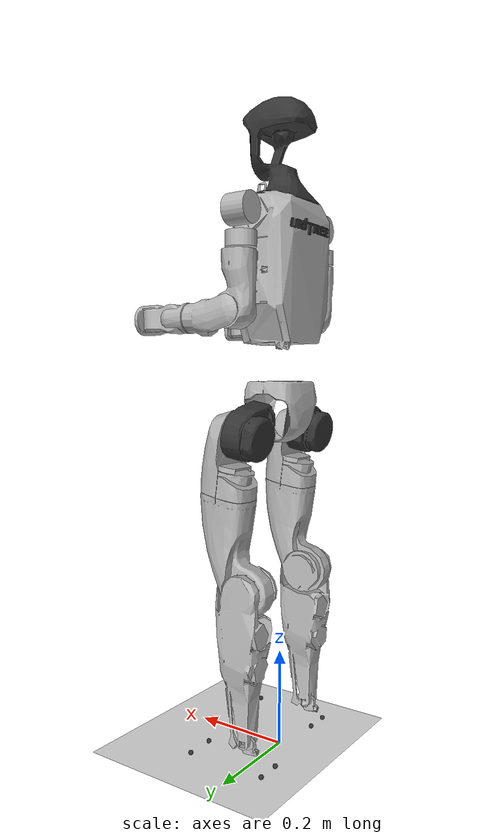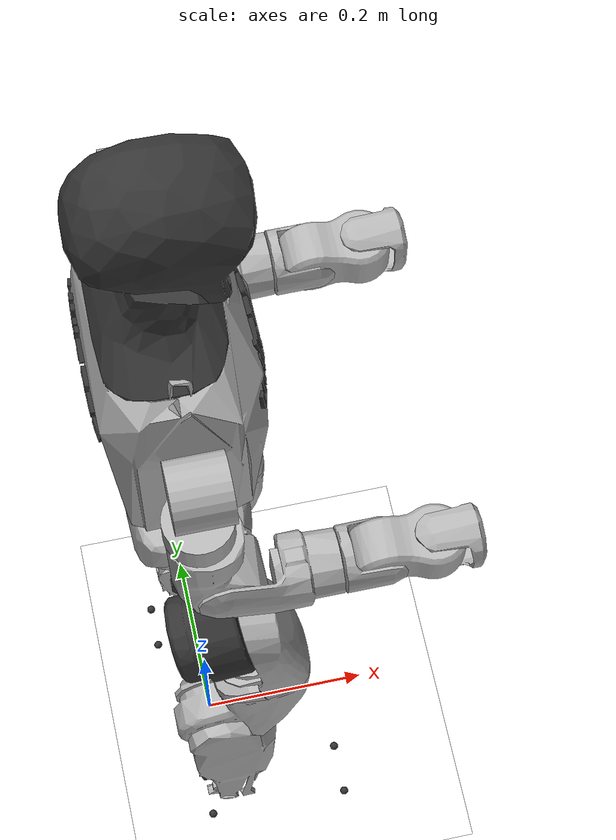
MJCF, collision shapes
<mujoco model="g1_mocap">
  <compiler angle="radian" meshdir="meshes"/>

  <default>
    <motor ctrlrange="-1 1" ctrllimited="true"/>
    <joint actuatorfrclimited="true" type="hinge"/>
  </default>

  <asset>
    <mesh name="pelvis" file="pelvis.STL"/>
    <mesh name="pelvis_contour_link" file="pelvis_contour_link.STL"/>
    <mesh name="left_hip_pitch_link" file="left_hip_pitch_link.STL"/>
    <mesh name="left_hip_roll_link" file="left_hip_roll_link.STL"/>
    <mesh name="left_hip_yaw_link" file="left_hip_yaw_link.STL"/>
    <mesh name="left_knee_link" file="left_knee_link.STL"/>
    <mesh name="left_ankle_pitch_link" file="left_ankle_pitch_link.STL"/>
    <mesh name="left_ankle_roll_link" file="left_ankle_roll_link.STL"/>
    <mesh name="right_hip_pitch_link" file="right_hip_pitch_link.STL"/>
    <mesh name="right_hip_roll_link" file="right_hip_roll_link.STL"/>
    <mesh name="right_hip_yaw_link" file="right_hip_yaw_link.STL"/>
    <mesh name="right_knee_link" file="right_knee_link.STL"/>
    <mesh name="right_ankle_pitch_link" file="right_ankle_pitch_link.STL"/>
    <mesh name="right_ankle_roll_link" file="right_ankle_roll_link.STL"/>
    <mesh name="waist_yaw_link" file="waist_yaw_link_rev_1_0.STL"/>
    <mesh name="waist_roll_link" file="waist_roll_link_rev_1_0.STL"/>
    <mesh name="torso_link" file="torso_link_rev_1_0.STL"/>
    <mesh name="logo_link" file="logo_link.STL"/>
    <mesh name="head_link" file="head_link.STL"/>
    <mesh name="left_shoulder_pitch_link" file="left_shoulder_pitch_link.STL"/>
    <mesh name="left_shoulder_roll_link" file="left_shoulder_roll_link.STL"/>
    <mesh name="left_shoulder_yaw_link" file="left_shoulder_yaw_link.STL"/>
    <mesh name="left_elbow_link" file="left_elbow_link.STL"/>
    <mesh name="left_wrist_roll_link" file="left_wrist_roll_link.STL"/>
    <mesh name="left_wrist_pitch_link" file="left_wrist_pitch_link.STL"/>
    <mesh name="left_wrist_yaw_link" file="left_wrist_yaw_link.STL"/>
    <mesh name="left_rubber_hand" file="left_rubber_hand.STL"/>
    <mesh name="right_shoulder_pitch_link" file="right_shoulder_pitch_link.STL"/>
    <mesh name="right_shoulder_roll_link" file="right_shoulder_roll_link.STL"/>
    <mesh name="right_shoulder_yaw_link" file="right_shoulder_yaw_link.STL"/>
    <mesh name="right_elbow_link" file="right_elbow_link.STL"/>
    <mesh name="right_wrist_roll_link" file="right_wrist_roll_link.STL"/>
    <mesh name="right_wrist_pitch_link" file="right_wrist_pitch_link.STL"/>
    <mesh name="right_wrist_yaw_link" file="right_wrist_yaw_link.STL"/>
    <mesh name="right_rubber_hand" file="right_rubber_hand.STL"/>
  </asset>

  <worldbody>
    <body name="pelvis" pos="0 0 0.793">
      <inertial pos="0 0 -0.07605" quat="1 0 -0.000399148 0" mass="3.813" diaginertia="0.010549 0.0093089 0.0079184"/>
      <freejoint name="pelvis"/>
      <geom type="mesh" contype="0" conaffinity="0" group="1" density="0" rgba="0.2 0.2 0.2 1" mesh="pelvis"/>
      <geom type="mesh" contype="0" conaffinity="0" group="1" density="0" rgba="0.7 0.7 0.7 1" mesh="pelvis_contour_link"/>
      <geom type="mesh" rgba="0.7 0.7 0.7 1" mesh="pelvis_contour_link"/>
      <site name="imu_in_pelvis" size="0.01" pos="0.04525 0 -0.08339"/>
      <!-- Keyframe pelvis -->
      <body name="keyframe_pelvis_link" pos="0 0 -0.075">
        <inertial pos="0 0 0" mass="0.001" diaginertia="1e-07 1e-07 1e-07"/>
      </body>
      <body name="left_hip_pitch_link" pos="0 0.064452 -0.1027">
        <inertial pos="0.002741 0.047791 -0.02606" quat="0.954862 0.293964 0.0302556 0.030122" mass="1.35" diaginertia="0.00181517 0.00153422 0.00116212"/>
        <joint name="left_hip_pitch_joint" pos="0 0 0" axis="0 1 0" range="-1.57 1.57" actuatorfrcrange="-88 88"/>
        <geom type="mesh" contype="0" conaffinity="0" group="1" density="0" rgba="0.2 0.2 0.2 1" mesh="left_hip_pitch_link"/>
        <geom type="mesh" rgba="0.2 0.2 0.2 1" mesh="left_hip_pitch_link"/>
        <body name="left_hip_roll_link" pos="0 0.052 -0.030465" quat="0.996179 0 -0.0873386 0">
          <inertial pos="0.029812 -0.001045 -0.087934" quat="0.977808 -1.97119e-05 0.205576 -0.0403793" mass="1.52" diaginertia="0.00254986 0.00241169 0.00148755"/>
          <joint name="left_hip_roll_joint" pos="0 0 0" axis="1 0 0" range="-0.5236 1.57" actuatorfrcrange="-139 139"/>
          <geom type="mesh" contype="0" conaffinity="0" group="1" density="0" rgba="0.7 0.7 0.7 1" mesh="left_hip_roll_link"/>
          <geom type="mesh" rgba="0.7 0.7 0.7 1" mesh="left_hip_roll_link"/>
          <body name="keyframe_left_hip_link" pos="0 -0.01 0">
            <inertial pos="0 0 0" mass="0.001" diaginertia="1e-07 1e-07 1e-07"/>
          </body>
          <body name="left_hip_yaw_link" pos="0.025001 0 -0.12412">
            <inertial pos="-0.057709 -0.010981 -0.15078" quat="0.600598 0.15832 0.223482 0.751181" mass="1.702" diaginertia="0.00776166 0.00717575 0.00160139"/>
            <joint name="left_hip_yaw_joint" pos="0 0 0" axis="0 0 1" range="-1.57 1.57" actuatorfrcrange="-88 88"/>
            <geom type="mesh" contype="0" conaffinity="0" group="1" density="0" rgba="0.7 0.7 0.7 1" mesh="left_hip_yaw_link"/>
            <geom type="mesh" rgba="0.7 0.7 0.7 1" mesh="left_hip_yaw_link"/>
            <body name="left_knee_link" pos="-0.078273 0.0021489 -0.17734" quat="0.996179 0 0.0873386 0">
              <inertial pos="0.005457 0.003964 -0.12074" quat="0.923418 -0.0327699 0.0158246 0.382067" mass="1.932" diaginertia="0.0113804 0.0112778 0.00146458"/>
              <joint name="left_knee_joint" pos="0 0 0" axis="0 1 0" range="-0.087267 2.8798" actuatorfrcrange="-139 139"/>
              <geom type="mesh" contype="0" conaffinity="0" group="1" density="0" rgba="0.7 0.7 0.7 1" mesh="left_knee_link"/>
              <geom type="mesh" rgba="0.7 0.7 0.7 1" mesh="left_knee_link"/>
              <!-- Keyframe lower left leg -->
              <body name="keyframe_left_knee_link" pos="0 0 0">
                <inertial pos="0 0 0" mass="0.001" diaginertia="1e-07 1e-07 1e-07"/>
              </body>
              <body name="left_ankle_pitch_link" pos="0 -9.4445e-05 -0.30001">
                <inertial pos="-0.007269 0 0.011137" quat="0.603053 0.369225 0.369225 0.603053" mass="0.074" diaginertia="1.89e-05 1.40805e-05 6.9195e-06"/>
                <joint name="left_ankle_pitch_joint" pos="0 0 0" axis="0 1 0" range="-0.87267 0.5236" actuatorfrcrange="-50 50"/>
                <geom type="mesh" contype="0" conaffinity="0" group="1" density="0" rgba="0.7 0.7 0.7 1" mesh="left_ankle_pitch_link"/>
                <geom type="mesh" rgba="0.7 0.7 0.7 1" mesh="left_ankle_pitch_link"/>
                <body name="left_ankle_roll_link" pos="0 0 -0.017558">
                  <inertial pos="0.026505 0 -0.016425" quat="-0.000481092 0.728482 -0.000618967 0.685065" mass="0.608" diaginertia="0.00167218 0.0016161 0.000217621"/>
                  <joint name="left_ankle_roll_joint" pos="0 0 0" axis="1 0 0" range="-0.2618 0.2618" actuatorfrcrange="-50 50"/>
                  <geom type="mesh" contype="0" conaffinity="0" group="1" density="0" rgba="0.2 0.2 0.2 1" mesh="left_ankle_roll_link"/>
                  <geom size="0.005" pos="-0.05 0.025 -0.03" rgba="0.2 0.2 0.2 1"/>
                  <geom size="0.005" pos="-0.05 -0.025 -0.03" rgba="0.2 0.2 0.2 1"/>
                  <geom size="0.005" pos="0.12 0.03 -0.03" rgba="0.2 0.2 0.2 1"/>
                  <geom size="0.005" pos="0.12 -0.03 -0.03" rgba="0.2 0.2 0.2 1"/>
                  <!-- Keyframe left ankle (parent: left_ankle_roll_link per URDF) -->
                  <body name="keyframe_left_ankle_link" pos="0 0 0">
                      <inertial pos="0 0 0" mass="0.001" diaginertia="1e-07 1e-07 1e-07"/>
                  </body>
                  <body name="left_toe_link" pos="0.1 0 -0.02"/>
                  </body>
              </body>
            </body>
          </body>
        </body>
      </body>
      <body name="pelvis_contour_link" pos="0 0 0"></body>
      <body name="right_hip_pitch_link" pos="0 -0.064452 -0.1027">
        <inertial pos="0.002741 -0.047791 -0.02606" quat="0.954862 -0.293964 0.0302556 -0.030122" mass="1.35" diaginertia="0.00181517 0.00153422 0.00116212"/>
        <joint name="right_hip_pitch_joint" pos="0 0 0" axis="0 1 0" range="-1.57 1.57" actuatorfrcrange="-88 88"/>
        <geom type="mesh" contype="0" conaffinity="0" group="1" density="0" rgba="0.2 0.2 0.2 1" mesh="right_hip_pitch_link"/>
        <geom type="mesh" rgba="0.2 0.2 0.2 1" mesh="right_hip_pitch_link"/>
        <body name="right_hip_roll_link" pos="0 -0.052 -0.030465" quat="0.996179 0 -0.0873386 0">
          <inertial pos="0.029812 0.001045 -0.087934" quat="0.977808 1.97119e-05 0.205576 0.0403793" mass="1.52" diaginertia="0.00254986 0.00241169 0.00148755"/>
          <joint name="right_hip_roll_joint" pos="0 0 0" axis="1 0 0" range="-1.57 0.5236" actuatorfrcrange="-139 139"/>
          <geom type="mesh" contype="0" conaffinity="0" group="1" density="0" rgba="0.7 0.7 0.7 1" mesh="right_hip_roll_link"/>
          <geom type="mesh" rgba="0.7 0.7 0.7 1" mesh="right_hip_roll_link"/>
          <!-- Keyframe hips -->
          <body name="keyframe_right_hip_link" pos="0 0.01 0">
            <inertial pos="0 0 0" mass="0.001" diaginertia="1e-07 1e-07 1e-07"/>
          </body>
          <body name="right_hip_yaw_link" pos="0.025001 0 -0.12412">
            <inertial pos="-0.057709 0.010981 -0.15078" quat="0.751181 0.223482 0.15832 0.600598" mass="1.702" diaginertia="0.00776166 0.00717575 0.00160139"/>
            <joint name="right_hip_yaw_joint" pos="0 0 0" axis="0 0 1" range="-1.57 1.57" actuatorfrcrange="-88 88"/>
            <geom type="mesh" contype="0" conaffinity="0" group="1" density="0" rgba="0.7 0.7 0.7 1" mesh="right_hip_yaw_link"/>
            <geom type="mesh" rgba="0.7 0.7 0.7 1" mesh="right_hip_yaw_link"/>
            <body name="right_knee_link" pos="-0.078273 -0.0021489 -0.17734" quat="0.996179 0 0.0873386 0">
              <inertial pos="0.005457 -0.003964 -0.12074" quat="0.923439 0.0345276 0.0116333 -0.382012" mass="1.932" diaginertia="0.011374 0.0112843 0.00146452"/>
              <joint name="right_knee_joint" pos="0 0 0" axis="0 1 0" range="-0.087267 2.8798" actuatorfrcrange="-139 139"/>
              <geom type="mesh" contype="0" conaffinity="0" group="1" density="0" rgba="0.7 0.7 0.7 1" mesh="right_knee_link"/>
              <geom type="mesh" rgba="0.7 0.7 0.7 1" mesh="right_knee_link"/>
              <!-- Keyframe lower right leg -->
              <body name="keyframe_right_knee_link" pos="0 0 0">
                <inertial pos="0 0 0" mass="0.001" diaginertia="1e-07 1e-07 1e-07"/>
              </body>
              <body name="right_ankle_pitch_link" pos="0 9.4445e-05 -0.30001">
                <inertial pos="-0.007269 0 0.011137" quat="0.603053 0.369225 0.369225 0.603053" mass="0.074" diaginertia="1.89e-05 1.40805e-05 6.9195e-06"/>
                <joint name="right_ankle_pitch_joint" pos="0 0 0" axis="0 1 0" range="-0.87267 0.5236" actuatorfrcrange="-50 50"/>
                <geom type="mesh" contype="0" conaffinity="0" group="1" density="0" rgba="0.7 0.7 0.7 1" mesh="right_ankle_pitch_link"/>
                <geom type="mesh" rgba="0.7 0.7 0.7 1" mesh="right_ankle_pitch_link"/>
                <body name="right_ankle_roll_link" pos="0.026505 0 -0.016425">
                  <inertial pos="0.026505 0 -0.016425" quat="0.000481092 0.728482 0.000618967 0.685065" mass="0.608" diaginertia="0.00167218 0.0016161 0.000217621"/>
                  <joint name="right_ankle_roll_joint" pos="0 0 0" axis="1 0 0" range="-0.2618 0.2618" actuatorfrcrange="-50 50"/>
                  <geom type="mesh" contype="0" conaffinity="0" group="1" density="0" rgba="0.2 0.2 0.2 1" mesh="right_ankle_roll_link"/>
                  <geom size="0.005" pos="-0.05 0.025 -0.03" rgba="0.2 0.2 0.2 1"/>
                  <geom size="0.005" pos="-0.05 -0.025 -0.03" rgba="0.2 0.2 0.2 1"/>
                  <geom size="0.005" pos="0.12 0.03 -0.03" rgba="0.2 0.2 0.2 1"/>
                  <geom size="0.005" pos="0.12 -0.03 -0.03" rgba="0.2 0.2 0.2 1"/>
                  <!-- Keyframe right ankle (parent: right_ankle_roll_link per URDF) -->
                  <body name="keyframe_right_ankle_link" pos="0 0 0">
                    <inertial pos="0 0 0" mass="0.001" diaginertia="1e-07 1e-07 1e-07"/>
                  </body>
                  <body name="right_toe_link" pos="0.1 0 -0.02"/>
                  </body>
              </body>
            </body>
          </body>
        </body>
      </body>
      <body name="waist_yaw_link">
        <inertial pos="0.003494 0.000233 0.018034" quat="0.289697 0.591001 -0.337795 0.672821" mass="0.214" diaginertia="0.000163531 0.000107714 0.000102205"/>
        <joint name="waist_yaw_joint" pos="0 0 0" axis="0 0 1" range="-1.57 1.57" actuatorfrcrange="-88 88"/>
        <geom type="mesh" contype="0" conaffinity="0" group="1" density="0" rgba="0.7 0.7 0.7 1" mesh="waist_yaw_link"/>
        <body name="waist_roll_link" pos="-0.0039635 0 0.044">
          <inertial pos="0 2.3e-05 0" quat="0.5 0.5 -0.5 0.5" mass="0.086" diaginertia="8.245e-06 7.079e-06 6.339e-06"/>
          <joint name="waist_roll_joint" pos="0 0 0" axis="1 0 0" range="-0.52 0.52" actuatorfrcrange="-50 50"/>
          <geom type="mesh" contype="0" conaffinity="0" group="1" density="0" rgba="0.7 0.7 0.7 1" mesh="waist_roll_link"/>
          <body name="torso_link">
            <inertial pos="0.00203158 0.000339683 0.184568" quat="0.999803 -6.03319e-05 0.0198256 0.00131986" mass="7.818" diaginertia="0.121847 0.109825 0.0273735"/>
            <joint name="waist_pitch_joint" pos="0 0 0" axis="0 1 0" range="-0.52 0.52" actuatorfrcrange="-50 50"/>
            <geom type="mesh" contype="0" conaffinity="0" group="1" density="0" rgba="0.7 0.7 0.7 1" mesh="torso_link"/>
            <geom type="mesh" rgba="0.7 0.7 0.7 1" mesh="torso_link"/>
            <geom pos="0.0039635 0 -0.044" quat="1 0 0 0" type="mesh" contype="0" conaffinity="0" group="1" density="0" rgba="0.2 0.2 0.2 1" mesh="logo_link"/>
            <geom pos="0.0039635 0 -0.044" quat="1 0 0 0" type="mesh" rgba="0.2 0.2 0.2 1" mesh="logo_link"/>
            <!-- Keyframe torso & head -->
            <body name="keyframe_torso_link" pos="0 0 0.2">
              <inertial pos="0 0 0" mass="0.001" diaginertia="1e-07 1e-07 1e-07"/>
            </body>
            <body name="keyframe_head_link" pos="0 0 0.45">
              <inertial pos="0 0 0" mass="0.001" diaginertia="1e-07 1e-07 1e-07"/>
            </body>
            <body name="head_link" pos="0.0039635 0 -0.044">
              <inertial pos="0.0001 0.0001 0.0001" quat="1.0 0.0 0.0 0.0" mass="1.036" diaginertia="0.004 0.004 0.002"/>
            </body>
            <body name="head_mocap" pos="0.0000 0.0000 0.4000"></body>
            <geom pos="0.0039635 0 -0.044" type="mesh" contype="0" conaffinity="0" group="1" density="0" rgba="0.2 0.2 0.2 1" mesh="head_link"/>
            <geom pos="0.0039635 0 -0.044" type="mesh" rgba="0.2 0.2 0.2 1" mesh="head_link"/>
            <site name="imu_in_torso" size="0.01" pos="-0.03959 -0.00224 0.14792"/>
            <body name="imu_in_torso" pos="-0.03959 -0.00224 0.14792"></body>
            <body name="left_shoulder_pitch_link" pos="0.0039563 0.10022 0.24778" quat="0.990264 0.139201 1.38722e-05 -9.86868e-05">
              <inertial pos="0 0.035892 -0.011628" quat="0.654152 0.0130458 -0.326267 0.68225" mass="0.718" diaginertia="0.000465864 0.000432842 0.000406394"/>
              <joint name="left_shoulder_pitch_joint" pos="0 0 0" axis="0 1 0" range="-3.0892 1.149" actuatorfrcrange="-25 25"/>
              <geom type="mesh" contype="0" conaffinity="0" group="1" density="0" rgba="0.7 0.7 0.7 1" mesh="left_shoulder_pitch_link"/>
              <geom size="0.03 0.025" pos="0 0.04 -0.01" quat="0.707107 0 0.707107 0" type="cylinder" rgba="0.7 0.7 0.7 1"/>
              <!-- Keyframe left collar -->
              <body name="keyframe_left_collar_link" pos="0 0 0.02">
                <inertial pos="0 0 0" mass="0.001" diaginertia="1e-07 1e-07 1e-07"/>
              </body>
              <body name="left_shoulder_roll_link" pos="0 0.038 -0.013831" quat="0.990268 -0.139172 0 0">
                <inertial pos="-0.000227 0.00727 -0.063243" quat="0.701256 -0.0196223 -0.00710317 0.712604" mass="0.643" diaginertia="0.000691311 0.000618011 0.000388977"/>
                <joint name="left_shoulder_roll_joint" pos="0 0 0" axis="1 0 0" range="-0.6 2.2515" actuatorfrcrange="-25 25"/>
                <geom type="mesh" contype="0" conaffinity="0" group="1" density="0" rgba="0.7 0.7 0.7 1" mesh="left_shoulder_roll_link"/>
                <geom size="0.03 0.015" pos="-0.004 0.006 -0.053" type="cylinder" rgba="0.7 0.7 0.7 1"/>
                <!-- Keyframe left shoulder (parent: left_shoulder_roll_link per URDF) -->
                <body name="keyframe_left_shoulder_link" pos="0 0 0">
                  <inertial pos="0 0 0" mass="0.001" diaginertia="1e-07 1e-07 1e-07"/>
                </body>
                <body name="left_shoulder_yaw_link" pos="0 0.00624 -0.1032">
                  <inertial pos="0.010773 -0.002949 -0.072009" quat="0.716879 -0.0964829 -0.0679942 0.687134" mass="0.734" diaginertia="0.00106187 0.00103217 0.000400661"/>
                  <joint name="left_shoulder_yaw_joint" pos="0 0 0" axis="0 0 1" range="-1.4 2.0" actuatorfrcrange="-25 25"/>
                  <geom type="mesh" contype="0" conaffinity="0" group="1" density="0" rgba="0.7 0.7 0.7 1" mesh="left_shoulder_yaw_link"/>
                  <geom type="mesh" rgba="0.7 0.7 0.7 1" mesh="left_shoulder_yaw_link"/>
                  <body name="left_elbow_link" pos="0.015783 0 -0.080518">
                    <inertial pos="0.064956 0.004454 -0.010062" quat="0.541765 0.636132 0.388821 0.388129" mass="0.6" diaginertia="0.000443035 0.000421612 0.000259353"/>
                    <joint name="left_elbow_joint" pos="0 0 0" axis="0 1 0" range="-1.0472 1.7" actuatorfrcrange="-25 25"/>
                    <geom type="mesh" contype="0" conaffinity="0" group="1" density="0" rgba="0.7 0.7 0.7 1" mesh="left_elbow_link"/>
                    <geom type="mesh" rgba="0.7 0.7 0.7 1" mesh="left_elbow_link"/>
                    <!-- Keyframe left elbow / wrist (keyframe_left_shoulder is under left_shoulder_roll_link) -->
                    <body name="keyframe_left_elbow_link" pos="0 0 0">
                      <inertial pos="0 0 0" mass="0.001" diaginertia="1e-07 1e-07 1e-07"/>
                    </body>
                    <body name="left_wrist_roll_link" pos="0.1 0.00188791 -0.01">
                      <inertial pos="0.0171394 0.000537591 4.8864e-07" quat="0.575338 0.411667 -0.574906 0.411094" mass="0.085445" diaginertia="5.48211e-05 4.96646e-05 3.57798e-05"/>
                      <joint name="left_wrist_roll_joint" pos="0 0 0" axis="1 0 0" range="-1.97222 1.97222" actuatorfrcrange="-25 25"/>
                      <geom type="mesh" contype="0" conaffinity="0" group="1" density="0" rgba="0.7 0.7 0.7 1" mesh="left_wrist_roll_link"/>
                      <geom type="mesh" rgba="0.7 0.7 0.7 1" mesh="left_wrist_roll_link"/>
                      <body name="left_wrist_pitch_link" pos="0.038 0 0">
                        <inertial pos="0.0229999 -0.00111685 -0.00111658" quat="0.249998 0.661363 0.293036 0.643608" mass="0.48405" diaginertia="0.000430353 0.000429873 0.000164648"/>
                        <joint name="left_wrist_pitch_joint" pos="0 0 0" axis="0 1 0" range="-1.61443 1.61443" actuatorfrcrange="-5 5"/>
                        <geom type="mesh" contype="0" conaffinity="0" group="1" density="0" rgba="0.7 0.7 0.7 1" mesh="left_wrist_pitch_link"/>
                        <geom type="mesh" rgba="0.7 0.7 0.7 1" mesh="left_wrist_pitch_link"/>
                      <body name="left_wrist_yaw_link" pos="0.046 0 0">
                          <inertial pos="0.0708244 0.000191745 0.00161742" quat="0.510571 0.526295 0.468078 0.493188" mass="0.254576" diaginertia="0.000646113 0.000559993 0.000147566"/>
                          <joint name="left_wrist_yaw_joint" pos="0 0 0" axis="0 0 1" range="-1.61443 1.61443" actuatorfrcrange="-5 5"/>
                          <geom type="mesh" contype="0" conaffinity="0" group="1" density="0" rgba="0.7 0.7 0.7 1" mesh="left_wrist_yaw_link"/>
                          <geom type="mesh" rgba="0.7 0.7 0.7 1" mesh="left_wrist_yaw_link"/>
                          <body name="left_rubber_hand" pos="0.0415 0.003 0" quat="1 0 0 0">
                            <geom type="mesh" contype="0" conaffinity="0" group="1" density="0" rgba="0.7 0.7 0.7 1" mesh="left_rubber_hand"/>
                            <!-- Left palm (from URDF: left_palm_link) -->
                            <body name="left_palm_link" pos="0.06 -0.02 0.0">
                              <inertial pos="0 0 0" mass="0.001" diaginertia="1e-07 1e-07 1e-07"/>
                              <!-- 这里可按需补充 palm 的可视化几何体 -->
                            </body>
                            <!-- Keyframe left wrist -->
                            <body name="keyframe_left_wrist_link" pos="0 0 0">
                              <inertial pos="0 0 0" mass="0.001" diaginertia="1e-07 1e-07 1e-07"/>
                            </body>
                          </body>
                        </body>
                      </body>
                    </body>
                  </body>
                </body>
              </body>
            </body>
            <body name="right_shoulder_pitch_link" pos="0.0039563 -0.10021 0.24778" quat="0.990264 -0.139201 1.38722e-05 9.86868e-05">
              <inertial pos="0 -0.035892 -0.011628" quat="0.68225 -0.326267 0.0130458 0.654152" mass="0.718" diaginertia="0.000465864 0.000432842 0.000406394"/>
              <joint name="right_shoulder_pitch_joint" pos="0 0 0" axis="0 1 0" range="-3.0892 1.149" actuatorfrcrange="-25 25"/>
              <geom type="mesh" contype="0" conaffinity="0" group="1" density="0" rgba="0.7 0.7 0.7 1" mesh="right_shoulder_pitch_link"/>
              <geom size="0.03 0.025" pos="0 -0.04 -0.01" quat="0.707107 0 0.707107 0" type="cylinder" rgba="0.7 0.7 0.7 1"/>
              <!-- Keyframe right collar (parent: right_shoulder_pitch_link per URDF) -->
              <body name="keyframe_right_collar_link" pos="0 0 0.02">
                <inertial pos="0 0 0" mass="0.001" diaginertia="1e-07 1e-07 1e-07"/>
              </body>
              <body name="right_shoulder_roll_link" pos="0 -0.038 -0.013831" quat="0.990268 0.139172 0 0">
                <inertial pos="-0.000227 -0.00727 -0.063243" quat="0.712604 -0.00710317 -0.0196223 0.701256" mass="0.643" diaginertia="0.000691311 0.000618011 0.000388977"/>
                <joint name="right_shoulder_roll_joint" pos="0 0 0" axis="1 0 0" range="-2.2515 0.6" actuatorfrcrange="-25 25"/>
                <geom type="mesh" contype="0" conaffinity="0" group="1" density="0" rgba="0.7 0.7 0.7 1" mesh="right_shoulder_roll_link"/>
                <geom size="0.03 0.015" pos="-0.004 -0.006 -0.053" type="cylinder" rgba="0.7 0.7 0.7 1"/>
                <!-- Keyframe right shoulder (parent: right_shoulder_roll_link per URDF) -->
                <body name="keyframe_right_shoulder_link" pos="0 0 0">
                  <inertial pos="0 0 0" mass="0.001" diaginertia="1e-07 1e-07 1e-07"/>
                </body>
                <body name="right_shoulder_yaw_link" pos="0 -0.00624 -0.1032">
                  <inertial pos="0.010773 0.002949 -0.072009" quat="0.687134 -0.0679942 -0.0964829 0.716879" mass="0.734" diaginertia="0.00106187 0.00103217 0.000400661"/>
                  <joint name="right_shoulder_yaw_joint" pos="0 0 0" axis="0 0 1" range="-2.0 1.4" actuatorfrcrange="-25 25"/>
                  <geom type="mesh" contype="0" conaffinity="0" group="1" density="0" rgba="0.7 0.7 0.7 1" mesh="right_shoulder_yaw_link"/>
                  <geom type="mesh" rgba="0.7 0.7 0.7 1" mesh="right_shoulder_yaw_link"/>
                  <body name="right_elbow_link" pos="0.015783 0 -0.080518">
                    <inertial pos="0.064956 -0.004454 -0.010062" quat="0.388129 0.388821 0.636132 0.541765" mass="0.6" diaginertia="0.000443035 0.000421612 0.000259353"/>
                    <joint name="right_elbow_joint" pos="0 0 0" axis="0 1 0" range="-1.0472 1.7" actuatorfrcrange="-25 25"/>
                    <geom type="mesh" contype="0" conaffinity="0" group="1" density="0" rgba="0.7 0.7 0.7 1" mesh="right_elbow_link"/>
                    <geom type="mesh" rgba="0.7 0.7 0.7 1" mesh="right_elbow_link"/>
                    <!-- Keyframe right elbow -->
                    <body name="keyframe_right_elbow_link" pos="0 0 0">
                      <inertial pos="0 0 0" mass="0.001" diaginertia="1e-07 1e-07 1e-07"/>
                    </body>
                    <body name="right_wrist_roll_link" pos="0.1 -0.00188791 -0.01">
                      <inertial pos="0.0171394 -0.000537591 4.8864e-07" quat="0.411667 0.575338 -0.411094 0.574906" mass="0.085445" diaginertia="5.48211e-05 4.96646e-05 3.57798e-05"/>
                      <joint name="right_wrist_roll_joint" pos="0 0 0" axis="1 0 0" range="-1.97222 1.97222" actuatorfrcrange="-25 25"/>
                      <geom type="mesh" contype="0" conaffinity="0" group="1" density="0" rgba="0.7 0.7 0.7 1" mesh="right_wrist_roll_link"/>
                      <geom type="mesh" rgba="0.7 0.7 0.7 1" mesh="right_wrist_roll_link"/>
                      <body name="right_wrist_pitch_link" pos="0.038 0 0">
                        <inertial pos="0.0229999 0.00111685 -0.00111658" quat="0.643608 0.293036 0.661363 0.249998" mass="0.48405" diaginertia="0.000430353 0.000429873 0.000164648"/>
                        <joint name="right_wrist_pitch_joint" pos="0 0 0" axis="0 1 0" range="-1.61443 1.61443" actuatorfrcrange="-5 5"/>
                        <geom type="mesh" contype="0" conaffinity="0" group="1" density="0" rgba="0.7 0.7 0.7 1" mesh="right_wrist_pitch_link"/>
                        <geom type="mesh" rgba="0.7 0.7 0.7 1" mesh="right_wrist_pitch_link"/>
                      <body name="right_wrist_yaw_link" pos="0.046 0 0">
                          <inertial pos="0.0708244 -0.000191745 0.00161742" quat="0.493188 0.468078 0.526295 0.510571" mass="0.254576" diaginertia="0.000646113 0.000559993 0.000147566"/>
                          <joint name="right_wrist_yaw_joint" pos="0 0 0" axis="0 0 1" range="-1.61443 1.61443" actuatorfrcrange="-5 5"/>
                          <geom type="mesh" contype="0" conaffinity="0" group="1" density="0" rgba="0.7 0.7 0.7 1" mesh="right_wrist_yaw_link"/>
                          <geom type="mesh" rgba="0.7 0.7 0.7 1" mesh="right_wrist_yaw_link"/>
                          <body name="right_rubber_hand" pos="0.0415 -0.003 0" quat="1 0 0 0">
                            <geom type="mesh" contype="0" conaffinity="0" group="1" density="0" rgba="0.7 0.7 0.7 1" mesh="right_rubber_hand"/>
                            <!-- Right palm (from URDF: right_palm_link) -->
                            <body name="right_palm_link" pos="0.06 0.02 0.0">
                              <inertial pos="0 0 0" mass="0.001" diaginertia="1e-07 1e-07 1e-07"/>
                              <!-- 这里可按需补充 palm 的可视化几何体 -->
                            </body>
                            <!-- Keyframe right wrist -->
                            <body name="keyframe_right_wrist_link" pos="0 0 0">
                              <inertial pos="0 0 0" mass="0.001" diaginertia="1e-07 1e-07 1e-07"/>
                            </body>
                          </body>
                        </body>
                      </body>
                    </body>
                  </body>
                </body>
              </body>
            </body>
          </body>
        </body>
      </body>
    </body>
  </worldbody>

  <actuator>
    <motor name="left_hip_pitch_joint" joint="left_hip_pitch_joint"/>
    <motor name="left_hip_roll_joint" joint="left_hip_roll_joint"/>
    <motor name="left_hip_yaw_joint" joint="left_hip_yaw_joint"/>
    <motor name="left_knee_joint" joint="left_knee_joint"/>
    <motor name="left_ankle_pitch_joint" joint="left_ankle_pitch_joint"/>
    <motor name="left_ankle_roll_joint" joint="left_ankle_roll_joint"/>
    <motor name="right_hip_pitch_joint" joint="right_hip_pitch_joint"/>
    <motor name="right_hip_roll_joint" joint="right_hip_roll_joint"/>
    <motor name="right_hip_yaw_joint" joint="right_hip_yaw_joint"/>
    <motor name="right_knee_joint" joint="right_knee_joint"/>
    <motor name="right_ankle_pitch_joint" joint="right_ankle_pitch_joint"/>
    <motor name="right_ankle_roll_joint" joint="right_ankle_roll_joint"/>
    <motor name="waist_yaw_joint" joint="waist_yaw_joint"/>
    <motor name="waist_roll_joint" joint="waist_roll_joint"/>
    <motor name="waist_pitch_joint" joint="waist_pitch_joint"/>
    <motor name="left_shoulder_pitch_joint" joint="left_shoulder_pitch_joint"/>
    <motor name="left_shoulder_roll_joint" joint="left_shoulder_roll_joint"/>
    <motor name="left_shoulder_yaw_joint" joint="left_shoulder_yaw_joint"/>
    <motor name="left_elbow_joint" joint="left_elbow_joint"/>
    <motor name="left_wrist_roll_joint" joint="left_wrist_roll_joint"/>
    <motor name="left_wrist_pitch_joint" joint="left_wrist_pitch_joint"/>
    <motor name="left_wrist_yaw_joint" joint="left_wrist_yaw_joint"/>
    <motor name="right_shoulder_pitch_joint" joint="right_shoulder_pitch_joint"/>
    <motor name="right_shoulder_roll_joint" joint="right_shoulder_roll_joint"/>
    <motor name="right_shoulder_yaw_joint" joint="right_shoulder_yaw_joint"/>
    <motor name="right_elbow_joint" joint="right_elbow_joint"/>
    <motor name="right_wrist_roll_joint" joint="right_wrist_roll_joint"/>
    <motor name="right_wrist_pitch_joint" joint="right_wrist_pitch_joint"/>
    <motor name="right_wrist_yaw_joint" joint="right_wrist_yaw_joint"/>
  </actuator>

   <sensor>
    <framequat name='orientation' objtype='site' noise='0.001' objname='imu_in_pelvis'/>
    <framepos name='position' objtype='site' noise='0.001' objname='imu_in_pelvis'/>
    <gyro name='angular-velocity' cutoff='34.9' noise='0.005' site='imu_in_pelvis'/>
  </sensor>

  <!-- setup scene -->
  <statistic center="1.0 0.7 1.0" extent="0.8"/>
  <visual>
    <headlight diffuse="0.6 0.6 0.6" ambient="0.1 0.1 0.1" specular="0.9 0.9 0.9"/>
    <rgba haze="0.15 0.25 0.35 1"/>
    <global azimuth="-140" elevation="-20" offwidth="2080" offheight="1170"/>
  </visual>
  <asset>
     <texture type="skybox" builtin="gradient" rgb1="1 1 1" rgb2="1 1 1" width="800" height="800"/>
    <texture type="2d" name="groundplane" builtin="checker" mark="edge" rgb1="1 1 1" rgb2="1 1 1" markrgb="0 0 0"
      width="300" height="300"/>
    <material name="groundplane" texture="groundplane" texuniform="true" texrepeat="5 5" reflectance="0"/>
    <texture type="skybox" builtin="gradient" rgb1=".4 .5 .6" rgb2="0 0 0" width="100" height="100"/>
    <texture builtin="flat" height="1278" mark="cross" markrgb="1 1 1" name="texgeom" random="0.01" rgb1="0.8 0.6 0.4" rgb2="0.8 0.6 0.4" type="cube" width="127"/>
    <texture name="texplane" builtin="checker" height="512" width="512" rgb1=".2 .3 .4" rgb2=".1 .15 .2" type="2d" />
    <material name="MatPlane" reflectance="0.5" shininess="0.01" specular="0.1" texrepeat="1 1" texture="texplane" texuniform="true" />
    <material name="geom" texture="texgeom" texuniform="true"/>
  </asset>
   <worldbody>
    <geom name="floor" size="0 0 0.01" type="plane" material="groundplane" contype="1" conaffinity="0" priority="1"
      friction="0.6" condim="3"/>

        <light diffuse=".5 .5 .5" pos="-3 -3 5" dir="3 3 -5" castshadow="true"/>

  </worldbody>
</mujoco>
